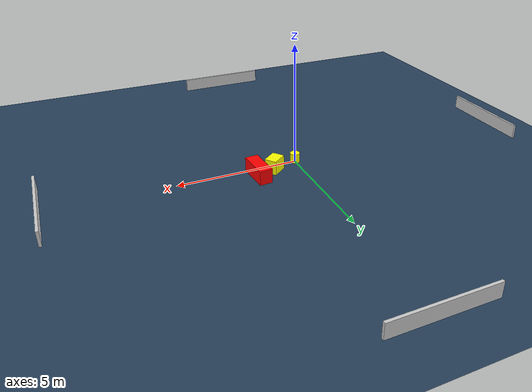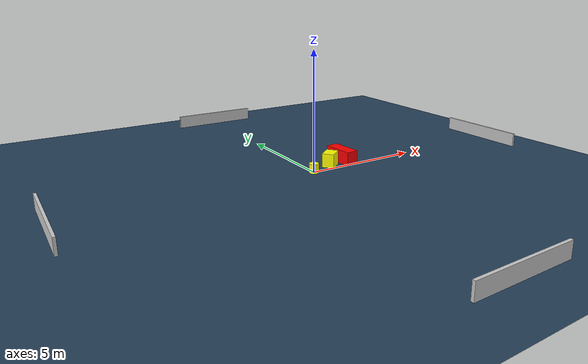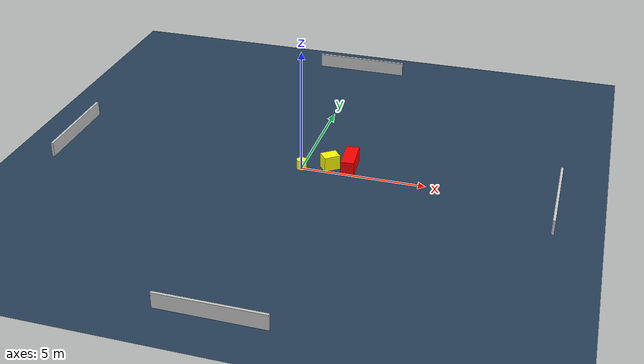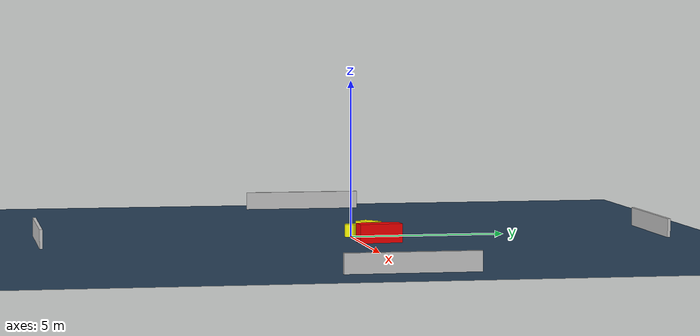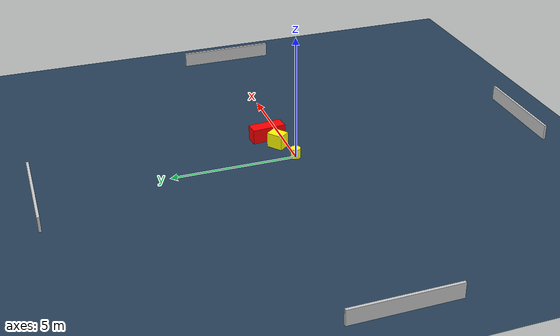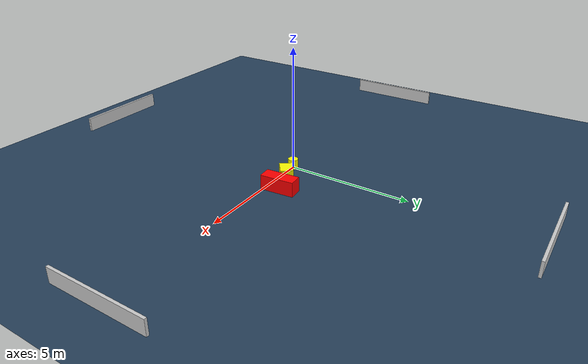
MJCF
<?xml version="1.0" ?>
<mujoco model="generated_environment">
  <option timestep="0.01" integrator="RK4" cone="elliptic"/>
  <default>
    <geom density="1"/>
  </default>
  <asset>
    <texture builtin="gradient" height="3072" name="skybox" rgb1="0.3 0.5 0.7" rgb2="0 0 0" type="skybox" width="512"/>
    <texture builtin="checker" height="300" name="groundplane" rgb1="0.2 0.3 0.4" rgb2="0.1 0.2 0.3" type="2d" width="300"/>
    <material name="groundplane" reflectance="0.2" texrepeat="5 5" texture="groundplane"/>
  </asset>
  <worldbody>
    <light dir="0 0 -1" directional="true" pos="0 0 1.5"/>
    <geom condim="3" friction="0.5 0.005 0.001" material="groundplane" name="floor" pos="0 0 0" size="0 0 0.05" type="plane"/>
    <body name="walls">
      <geom name="wall_1" condim="4" pos="-10.0 0.0 0.3" rgba="0.800000011920929 0.800000011920929 0.800000011920929 1.0" size="0.05 2.0 0.3" type="box"/>
      <geom name="wall_2" condim="4" pos="10.0 0.0 0.3" rgba="0.800000011920929 0.800000011920929 0.800000011920929 1.0" size="0.05 2.0 0.3" type="box"/>
      <geom name="wall_3" condim="4" pos="0.0 -10.0 0.3" rgba="0.800000011920929 0.800000011920929 0.800000011920929 1.0" size="2.0 0.05 0.3" type="box"/>
      <geom name="wall_4" condim="4" pos="0.0 10.0 0.3" rgba="0.800000011920929 0.800000011920929 0.800000011920929 1.0" size="2.0 0.05 0.3" type="box"/>
    </body>
    <body name="robot">
      <joint name="joint_x" type="slide" pos="0 0 0" axis="1 0 0"/>
      <joint name="joint_y" type="slide" pos="0 0 0" axis="0 1 0"/>
      <geom name="robot" type="cylinder" pos="0.0 0.0 0.2" size="0.2 0.2 0.0" mass="5.0" friction="1.0 0.005 0.0001" condim="4" rgba="1.0 1.0 0.0 1.0"/>
    </body>
    <body name="obstacle_1_movable">
      <geom name="obstacle_1_movable" condim="4" pos="1.07629807882577 0.3806794568757412 0.3" euler="0 0 218.24945844564783" friction="0.0 0.005 0.001" rgba="1.0 1.0 0.0 1.0" size="0.33219347274682287 0.2501517288752623 0.3" type="box" mass="0.1"/>
      <joint type="free"/>
    </body>
    <body name="obstacle_2_static">
      <geom name="obstacle_2_static" condim="4" pos="1.8370290037827022 0.5857097314083011 0.3" euler="0 0 94.6472469242171" friction="0.0 0.005 0.001" rgba="1.0 0.0 0.0 1.0" size="0.680755773211682 0.2679502392007622 0.3" type="box"/>
    </body>
  </worldbody>
  <actuator>
    <motor name="actuator_x" joint="joint_x" gear="1" ctrlrange="-1 1"/>
    <motor name="actuator_y" joint="joint_y" gear="1" ctrlrange="-1 1"/>
  </actuator>
</mujoco>
